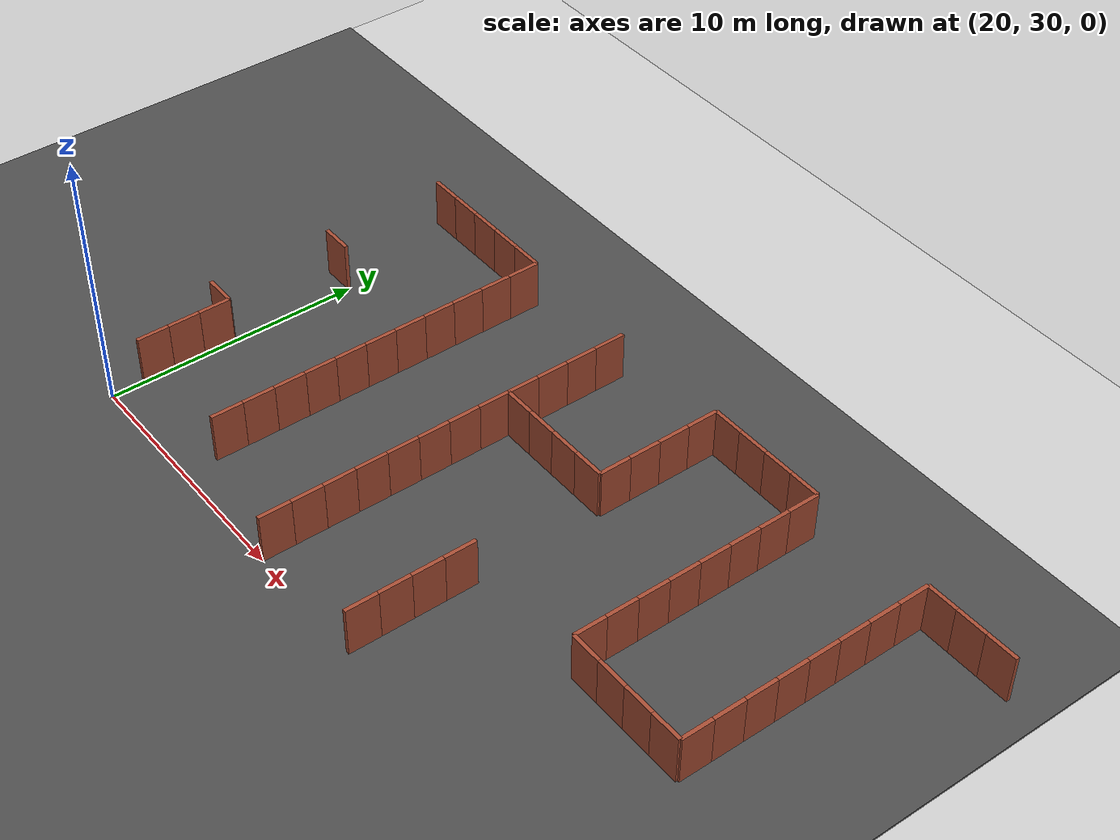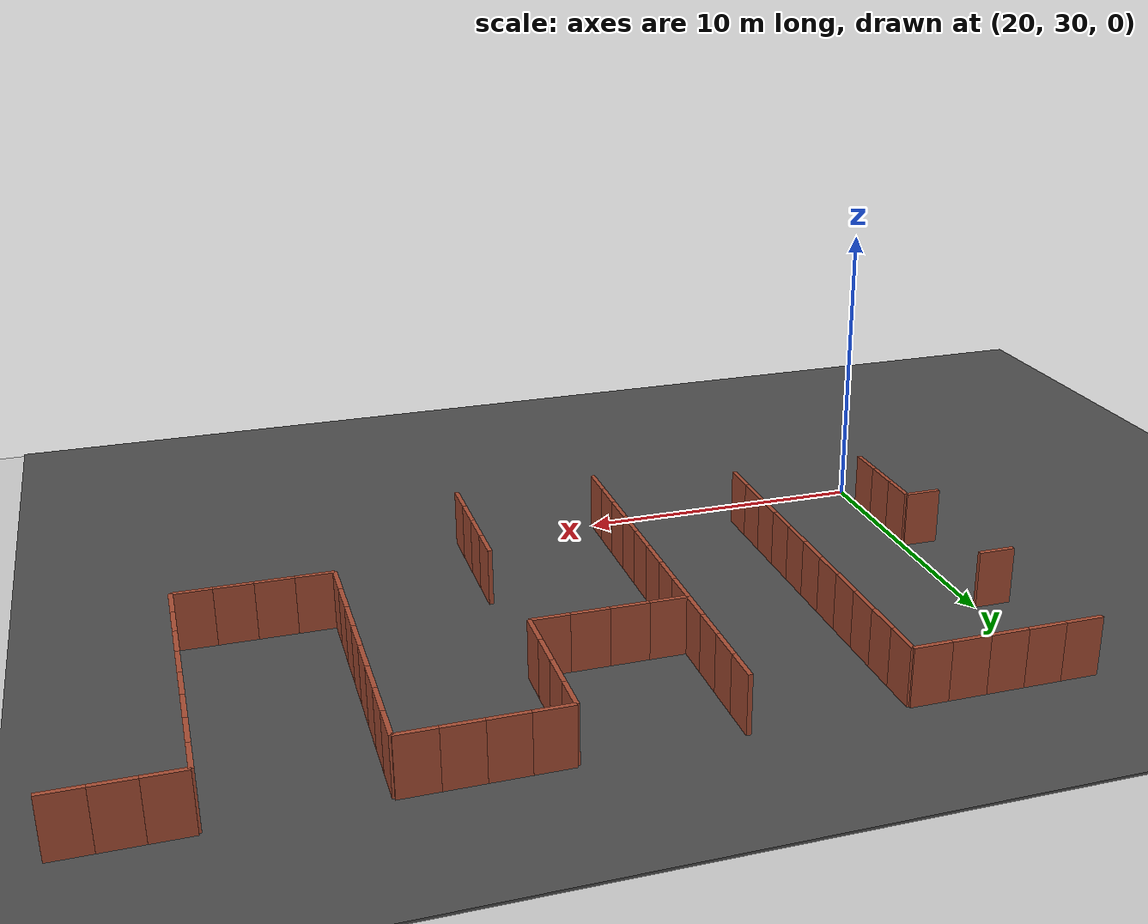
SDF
<sdf version="1.6">
 <world name="default">
  <model name="ground_plane">
   <static>1</static>
   <link name="link">
    <collision name="collision">
     <geometry><plane><normal>0 0 1</normal><size>100 100</size></plane></geometry>
     <surface><friction><ode><mu>100</mu><mu2>50</mu2></ode></friction></surface>
    </collision>
    <visual name="visual">
     <cast_shadows>0</cast_shadows>
     <geometry><plane><normal>0 0 1</normal><size>100 100</size></plane></geometry>
     <material>
      <script><uri>file://media/materials/scripts/gazebo.material</uri><name>Gazebo/Grey</name></script>
     </material>
    </visual>
   </link>
  </model>
  <model name="asphalt_plane">
   <static>1</static>
   <link name="link">
    <collision name="collision"><geometry><box><size>100 100 0.1</size></box></geometry></collision>
    <visual name="visual">
     <cast_shadows>0</cast_shadows>
     <geometry><box><size>100 100 0.1</size></box></geometry>
     <material>
      <script>
       <uri>model://asphalt_plane/materials/scripts</uri>
       <uri>model://asphalt_plane/materials/textures</uri>
       <name>vrc/asphalt</name>
      </script>
     </material>
    </visual>
   </link>
  </model>
  <model name="brick_wall_28_33_horizontal1">
   <pose>20 33.125 0 0 -0 1.5708</pose>
   <link name="Wall_0">
    <collision name="Wall_0_Collision">
     <geometry><box><size>1.25 0.15 2</size></box></geometry>
     <pose>0 0 1 0 -0 0</pose>
    </collision>
    <visual name="Wall_0_Visual">
     <pose>0 0 1 0 -0 0</pose>
     <geometry><box><size>1.25 0.15 2</size></box></geometry>
     <material>
      <script><uri>file://media/materials/scripts/gazebo.material</uri><name>Gazebo/Bricks</name></script>
      <ambient>1 1 1 1</ambient>
     </material>
     <meta><layer>0</layer></meta>
    </visual>
   </link>
   <static>1</static>
  </model>
  <model name="brick_wall_28_33_horizontal2">
   <pose>20 31.875 0 0 -0 1.5708</pose>
   <link name="Wall_0">
    <collision name="Wall_0_Collision">
     <geometry><box><size>1.25 0.15 2</size></box></geometry>
     <pose>0 0 1 0 -0 0</pose>
    </collision>
    <visual name="Wall_0_Visual">
     <pose>0 0 1 0 -0 0</pose>
     <geometry><box><size>1.25 0.15 2</size></box></geometry>
     <material>
      <script><uri>file://media/materials/scripts/gazebo.material</uri><name>Gazebo/Bricks</name></script>
      <ambient>1 1 1 1</ambient>
     </material>
     <meta><layer>0</layer></meta>
    </visual>
   </link>
   <static>1</static>
  </model>
  <model name="brick_wall_28_34_vertical2">
   <pose>19.375 35 0 0 -0 0</pose>
   <link name="Wall_0">
    <collision name="Wall_0_Collision">
     <geometry><box><size>1.25 0.15 2</size></box></geometry>
     <pose>0 0 1 0 -0 0</pose>
    </collision>
    <visual name="Wall_0_Visual">
     <pose>0 0 1 0 -0 0</pose>
     <geometry><box><size>1.25 0.15 2</size></box></geometry>
     <material>
      <script><uri>file://media/materials/scripts/gazebo.material</uri><name>Gazebo/Bricks</name></script>
      <ambient>1 1 1 1</ambient>
     </material>
     <meta><layer>0</layer></meta>
    </visual>
   </link>
   <static>1</static>
  </model>
  <model name="brick_wall_28_34_horizontal2">
   <pose>20 34.375 0 0 -0 1.5708</pose>
   <link name="Wall_0">
    <collision name="Wall_0_Collision">
     <geometry><box><size>1.25 0.15 2</size></box></geometry>
     <pose>0 0 1 0 -0 0</pose>
    </collision>
    <visual name="Wall_0_Visual">
     <pose>0 0 1 0 -0 0</pose>
     <geometry><box><size>1.25 0.15 2</size></box></geometry>
     <material>
      <script><uri>file://media/materials/scripts/gazebo.material</uri><name>Gazebo/Bricks</name></script>
      <ambient>1 1 1 1</ambient>
     </material>
     <meta><layer>0</layer></meta>
    </visual>
   </link>
   <static>1</static>
  </model>
  <model name="brick_wall_28_36_vertical2">
   <pose>19.375 40 0 0 -0 0</pose>
   <link name="Wall_0">
    <collision name="Wall_0_Collision">
     <geometry><box><size>1.25 0.15 2</size></box></geometry>
     <pose>0 0 1 0 -0 0</pose>
    </collision>
    <visual name="Wall_0_Visual">
     <pose>0 0 1 0 -0 0</pose>
     <geometry><box><size>1.25 0.15 2</size></box></geometry>
     <material>
      <script><uri>file://media/materials/scripts/gazebo.material</uri><name>Gazebo/Bricks</name></script>
      <ambient>1 1 1 1</ambient>
     </material>
     <meta><layer>0</layer></meta>
    </visual>
   </link>
   <static>1</static>
  </model>
  <model name="brick_wall_28_38_vertical1">
   <pose>20.625 45 0 0 -0 0</pose>
   <link name="Wall_0">
    <collision name="Wall_0_Collision">
     <geometry><box><size>1.25 0.15 2</size></box></geometry>
     <pose>0 0 1 0 -0 0</pose>
    </collision>
    <visual name="Wall_0_Visual">
     <pose>0 0 1 0 -0 0</pose>
     <geometry><box><size>1.25 0.15 2</size></box></geometry>
     <material>
      <script><uri>file://media/materials/scripts/gazebo.material</uri><name>Gazebo/Bricks</name></script>
      <ambient>1 1 1 1</ambient>
     </material>
     <meta><layer>0</layer></meta>
    </visual>
   </link>
   <static>1</static>
  </model>
  <model name="brick_wall_28_38_vertical2">
   <pose>19.375 45 0 0 -0 0</pose>
   <link name="Wall_0">
    <collision name="Wall_0_Collision">
     <geometry><box><size>1.25 0.15 2</size></box></geometry>
     <pose>0 0 1 0 -0 0</pose>
    </collision>
    <visual name="Wall_0_Visual">
     <pose>0 0 1 0 -0 0</pose>
     <geometry><box><size>1.25 0.15 2</size></box></geometry>
     <material>
      <script><uri>file://media/materials/scripts/gazebo.material</uri><name>Gazebo/Bricks</name></script>
      <ambient>1 1 1 1</ambient>
     </material>
     <meta><layer>0</layer></meta>
    </visual>
   </link>
   <static>1</static>
  </model>
  <model name="brick_wall_29_38_vertical1">
   <pose>23.125 45 0 0 -0 0</pose>
   <link name="Wall_0">
    <collision name="Wall_0_Collision">
     <geometry><box><size>1.25 0.15 2</size></box></geometry>
     <pose>0 0 1 0 -0 0</pose>
    </collision>
    <visual name="Wall_0_Visual">
     <pose>0 0 1 0 -0 0</pose>
     <geometry><box><size>1.25 0.15 2</size></box></geometry>
     <material>
      <script><uri>file://media/materials/scripts/gazebo.material</uri><name>Gazebo/Bricks</name></script>
      <ambient>1 1 1 1</ambient>
     </material>
     <meta><layer>0</layer></meta>
    </visual>
   </link>
   <static>1</static>
  </model>
  <model name="brick_wall_29_38_vertical2">
   <pose>21.875 45 0 0 -0 0</pose>
   <link name="Wall_0">
    <collision name="Wall_0_Collision">
     <geometry><box><size>1.25 0.15 2</size></box></geometry>
     <pose>0 0 1 0 -0 0</pose>
    </collision>
    <visual name="Wall_0_Visual">
     <pose>0 0 1 0 -0 0</pose>
     <geometry><box><size>1.25 0.15 2</size></box></geometry>
     <material>
      <script><uri>file://media/materials/scripts/gazebo.material</uri><name>Gazebo/Bricks</name></script>
      <ambient>1 1 1 1</ambient>
     </material>
     <meta><layer>0</layer></meta>
    </visual>
   </link>
   <static>1</static>
  </model>
  <model name="brick_wall_30_33_horizontal1">
   <pose>25 33.125 0 0 -0 1.5708</pose>
   <link name="Wall_0">
    <collision name="Wall_0_Collision">
     <geometry><box><size>1.25 0.15 2</size></box></geometry>
     <pose>0 0 1 0 -0 0</pose>
    </collision>
    <visual name="Wall_0_Visual">
     <pose>0 0 1 0 -0 0</pose>
     <geometry><box><size>1.25 0.15 2</size></box></geometry>
     <material>
      <script><uri>file://media/materials/scripts/gazebo.material</uri><name>Gazebo/Bricks</name></script>
      <ambient>1 1 1 1</ambient>
     </material>
     <meta><layer>0</layer></meta>
    </visual>
   </link>
   <static>1</static>
  </model>
  <model name="brick_wall_30_33_horizontal2">
   <pose>25 31.875 0 0 -0 1.5708</pose>
   <link name="Wall_0">
    <collision name="Wall_0_Collision">
     <geometry><box><size>1.25 0.15 2</size></box></geometry>
     <pose>0 0 1 0 -0 0</pose>
    </collision>
    <visual name="Wall_0_Visual">
     <pose>0 0 1 0 -0 0</pose>
     <geometry><box><size>1.25 0.15 2</size></box></geometry>
     <material>
      <script><uri>file://media/materials/scripts/gazebo.material</uri><name>Gazebo/Bricks</name></script>
      <ambient>1 1 1 1</ambient>
     </material>
     <meta><layer>0</layer></meta>
    </visual>
   </link>
   <static>1</static>
  </model>
  <model name="brick_wall_30_34_horizontal1">
   <pose>25 35.625 0 0 -0 1.5708</pose>
   <link name="Wall_0">
    <collision name="Wall_0_Collision">
     <geometry><box><size>1.25 0.15 2</size></box></geometry>
     <pose>0 0 1 0 -0 0</pose>
    </collision>
    <visual name="Wall_0_Visual">
     <pose>0 0 1 0 -0 0</pose>
     <geometry><box><size>1.25 0.15 2</size></box></geometry>
     <material>
      <script><uri>file://media/materials/scripts/gazebo.material</uri><name>Gazebo/Bricks</name></script>
      <ambient>1 1 1 1</ambient>
     </material>
     <meta><layer>0</layer></meta>
    </visual>
   </link>
   <static>1</static>
  </model>
  <model name="brick_wall_30_34_horizontal2">
   <pose>25 34.375 0 0 -0 1.5708</pose>
   <link name="Wall_0">
    <collision name="Wall_0_Collision">
     <geometry><box><size>1.25 0.15 2</size></box></geometry>
     <pose>0 0 1 0 -0 0</pose>
    </collision>
    <visual name="Wall_0_Visual">
     <pose>0 0 1 0 -0 0</pose>
     <geometry><box><size>1.25 0.15 2</size></box></geometry>
     <material>
      <script><uri>file://media/materials/scripts/gazebo.material</uri><name>Gazebo/Bricks</name></script>
      <ambient>1 1 1 1</ambient>
     </material>
     <meta><layer>0</layer></meta>
    </visual>
   </link>
   <static>1</static>
  </model>
  <model name="brick_wall_30_35_horizontal1">
   <pose>25 38.125 0 0 -0 1.5708</pose>
   <link name="Wall_0">
    <collision name="Wall_0_Collision">
     <geometry><box><size>1.25 0.15 2</size></box></geometry>
     <pose>0 0 1 0 -0 0</pose>
    </collision>
    <visual name="Wall_0_Visual">
     <pose>0 0 1 0 -0 0</pose>
     <geometry><box><size>1.25 0.15 2</size></box></geometry>
     <material>
      <script><uri>file://media/materials/scripts/gazebo.material</uri><name>Gazebo/Bricks</name></script>
      <ambient>1 1 1 1</ambient>
     </material>
     <meta><layer>0</layer></meta>
    </visual>
   </link>
   <static>1</static>
  </model>
  <model name="brick_wall_30_35_horizontal2">
   <pose>25 36.875 0 0 -0 1.5708</pose>
   <link name="Wall_0">
    <collision name="Wall_0_Collision">
     <geometry><box><size>1.25 0.15 2</size></box></geometry>
     <pose>0 0 1 0 -0 0</pose>
    </collision>
    <visual name="Wall_0_Visual">
     <pose>0 0 1 0 -0 0</pose>
     <geometry><box><size>1.25 0.15 2</size></box></geometry>
     <material>
      <script><uri>file://media/materials/scripts/gazebo.material</uri><name>Gazebo/Bricks</name></script>
      <ambient>1 1 1 1</ambient>
     </material>
     <meta><layer>0</layer></meta>
    </visual>
   </link>
   <static>1</static>
  </model>
  <model name="brick_wall_30_36_horizontal1">
   <pose>25 40.625 0 0 -0 1.5708</pose>
   <link name="Wall_0">
    <collision name="Wall_0_Collision">
     <geometry><box><size>1.25 0.15 2</size></box></geometry>
     <pose>0 0 1 0 -0 0</pose>
    </collision>
    <visual name="Wall_0_Visual">
     <pose>0 0 1 0 -0 0</pose>
     <geometry><box><size>1.25 0.15 2</size></box></geometry>
     <material>
      <script><uri>file://media/materials/scripts/gazebo.material</uri><name>Gazebo/Bricks</name></script>
      <ambient>1 1 1 1</ambient>
     </material>
     <meta><layer>0</layer></meta>
    </visual>
   </link>
   <static>1</static>
  </model>
  <model name="brick_wall_30_36_horizontal2">
   <pose>25 39.375 0 0 -0 1.5708</pose>
   <link name="Wall_0">
    <collision name="Wall_0_Collision">
     <geometry><box><size>1.25 0.15 2</size></box></geometry>
     <pose>0 0 1 0 -0 0</pose>
    </collision>
    <visual name="Wall_0_Visual">
     <pose>0 0 1 0 -0 0</pose>
     <geometry><box><size>1.25 0.15 2</size></box></geometry>
     <material>
      <script><uri>file://media/materials/scripts/gazebo.material</uri><name>Gazebo/Bricks</name></script>
      <ambient>1 1 1 1</ambient>
     </material>
     <meta><layer>0</layer></meta>
    </visual>
   </link>
   <static>1</static>
  </model>
  <model name="brick_wall_30_37_horizontal1">
   <pose>25 43.125 0 0 -0 1.5708</pose>
   <link name="Wall_0">
    <collision name="Wall_0_Collision">
     <geometry><box><size>1.25 0.15 2</size></box></geometry>
     <pose>0 0 1 0 -0 0</pose>
    </collision>
    <visual name="Wall_0_Visual">
     <pose>0 0 1 0 -0 0</pose>
     <geometry><box><size>1.25 0.15 2</size></box></geometry>
     <material>
      <script><uri>file://media/materials/scripts/gazebo.material</uri><name>Gazebo/Bricks</name></script>
      <ambient>1 1 1 1</ambient>
     </material>
     <meta><layer>0</layer></meta>
    </visual>
   </link>
   <static>1</static>
  </model>
  <model name="brick_wall_30_37_horizontal2">
   <pose>25 41.875 0 0 -0 1.5708</pose>
   <link name="Wall_0">
    <collision name="Wall_0_Collision">
     <geometry><box><size>1.25 0.15 2</size></box></geometry>
     <pose>0 0 1 0 -0 0</pose>
    </collision>
    <visual name="Wall_0_Visual">
     <pose>0 0 1 0 -0 0</pose>
     <geometry><box><size>1.25 0.15 2</size></box></geometry>
     <material>
      <script><uri>file://media/materials/scripts/gazebo.material</uri><name>Gazebo/Bricks</name></script>
      <ambient>1 1 1 1</ambient>
     </material>
     <meta><layer>0</layer></meta>
    </visual>
   </link>
   <static>1</static>
  </model>
  <model name="brick_wall_30_38_vertical2">
   <pose>24.375 45 0 0 -0 0</pose>
   <link name="Wall_0">
    <collision name="Wall_0_Collision">
     <geometry><box><size>1.25 0.15 2</size></box></geometry>
     <pose>0 0 1 0 -0 0</pose>
    </collision>
    <visual name="Wall_0_Visual">
     <pose>0 0 1 0 -0 0</pose>
     <geometry><box><size>1.25 0.15 2</size></box></geometry>
     <material>
      <script><uri>file://media/materials/scripts/gazebo.material</uri><name>Gazebo/Bricks</name></script>
      <ambient>1 1 1 1</ambient>
     </material>
     <meta><layer>0</layer></meta>
    </visual>
   </link>
   <static>1</static>
  </model>
  <model name="brick_wall_30_38_horizontal2">
   <pose>25 44.375 0 0 -0 1.5708</pose>
   <link name="Wall_0">
    <collision name="Wall_0_Collision">
     <geometry><box><size>1.25 0.15 2</size></box></geometry>
     <pose>0 0 1 0 -0 0</pose>
    </collision>
    <visual name="Wall_0_Visual">
     <pose>0 0 1 0 -0 0</pose>
     <geometry><box><size>1.25 0.15 2</size></box></geometry>
     <material>
      <script><uri>file://media/materials/scripts/gazebo.material</uri><name>Gazebo/Bricks</name></script>
      <ambient>1 1 1 1</ambient>
     </material>
     <meta><layer>0</layer></meta>
    </visual>
   </link>
   <static>1</static>
  </model>
  <model name="brick_wall_32_32_horizontal1">
   <pose>30 30.625 0 0 -0 1.5708</pose>
   <link name="Wall_0">
    <collision name="Wall_0_Collision">
     <geometry><box><size>1.25 0.15 2</size></box></geometry>
     <pose>0 0 1 0 -0 0</pose>
    </collision>
    <visual name="Wall_0_Visual">
     <pose>0 0 1 0 -0 0</pose>
     <geometry><box><size>1.25 0.15 2</size></box></geometry>
     <material>
      <script><uri>file://media/materials/scripts/gazebo.material</uri><name>Gazebo/Bricks</name></script>
      <ambient>1 1 1 1</ambient>
     </material>
     <meta><layer>0</layer></meta>
    </visual>
   </link>
   <static>1</static>
  </model>
  <model name="brick_wall_32_33_horizontal1">
   <pose>30 33.125 0 0 -0 1.5708</pose>
   <link name="Wall_0">
    <collision name="Wall_0_Collision">
     <geometry><box><size>1.25 0.15 2</size></box></geometry>
     <pose>0 0 1 0 -0 0</pose>
    </collision>
    <visual name="Wall_0_Visual">
     <pose>0 0 1 0 -0 0</pose>
     <geometry><box><size>1.25 0.15 2</size></box></geometry>
     <material>
      <script><uri>file://media/materials/scripts/gazebo.material</uri><name>Gazebo/Bricks</name></script>
      <ambient>1 1 1 1</ambient>
     </material>
     <meta><layer>0</layer></meta>
    </visual>
   </link>
   <static>1</static>
  </model>
  <model name="brick_wall_32_33_horizontal2">
   <pose>30 31.875 0 0 -0 1.5708</pose>
   <link name="Wall_0">
    <collision name="Wall_0_Collision">
     <geometry><box><size>1.25 0.15 2</size></box></geometry>
     <pose>0 0 1 0 -0 0</pose>
    </collision>
    <visual name="Wall_0_Visual">
     <pose>0 0 1 0 -0 0</pose>
     <geometry><box><size>1.25 0.15 2</size></box></geometry>
     <material>
      <script><uri>file://media/materials/scripts/gazebo.material</uri><name>Gazebo/Bricks</name></script>
      <ambient>1 1 1 1</ambient>
     </material>
     <meta><layer>0</layer></meta>
    </visual>
   </link>
   <static>1</static>
  </model>
  <model name="brick_wall_32_34_horizontal1">
   <pose>30 35.625 0 0 -0 1.5708</pose>
   <link name="Wall_0">
    <collision name="Wall_0_Collision">
     <geometry><box><size>1.25 0.15 2</size></box></geometry>
     <pose>0 0 1 0 -0 0</pose>
    </collision>
    <visual name="Wall_0_Visual">
     <pose>0 0 1 0 -0 0</pose>
     <geometry><box><size>1.25 0.15 2</size></box></geometry>
     <material>
      <script><uri>file://media/materials/scripts/gazebo.material</uri><name>Gazebo/Bricks</name></script>
      <ambient>1 1 1 1</ambient>
     </material>
     <meta><layer>0</layer></meta>
    </visual>
   </link>
   <static>1</static>
  </model>
  <model name="brick_wall_32_34_horizontal2">
   <pose>30 34.375 0 0 -0 1.5708</pose>
   <link name="Wall_0">
    <collision name="Wall_0_Collision">
     <geometry><box><size>1.25 0.15 2</size></box></geometry>
     <pose>0 0 1 0 -0 0</pose>
    </collision>
    <visual name="Wall_0_Visual">
     <pose>0 0 1 0 -0 0</pose>
     <geometry><box><size>1.25 0.15 2</size></box></geometry>
     <material>
      <script><uri>file://media/materials/scripts/gazebo.material</uri><name>Gazebo/Bricks</name></script>
      <ambient>1 1 1 1</ambient>
     </material>
     <meta><layer>0</layer></meta>
    </visual>
   </link>
   <static>1</static>
  </model>
  <model name="brick_wall_32_35_horizontal1">
   <pose>30 38.125 0 0 -0 1.5708</pose>
   <link name="Wall_0">
    <collision name="Wall_0_Collision">
     <geometry><box><size>1.25 0.15 2</size></box></geometry>
     <pose>0 0 1 0 -0 0</pose>
    </collision>
    <visual name="Wall_0_Visual">
     <pose>0 0 1 0 -0 0</pose>
     <geometry><box><size>1.25 0.15 2</size></box></geometry>
     <material>
      <script><uri>file://media/materials/scripts/gazebo.material</uri><name>Gazebo/Bricks</name></script>
      <ambient>1 1 1 1</ambient>
     </material>
     <meta><layer>0</layer></meta>
    </visual>
   </link>
   <static>1</static>
  </model>
  <model name="brick_wall_32_35_horizontal2">
   <pose>30 36.875 0 0 -0 1.5708</pose>
   <link name="Wall_0">
    <collision name="Wall_0_Collision">
     <geometry><box><size>1.25 0.15 2</size></box></geometry>
     <pose>0 0 1 0 -0 0</pose>
    </collision>
    <visual name="Wall_0_Visual">
     <pose>0 0 1 0 -0 0</pose>
     <geometry><box><size>1.25 0.15 2</size></box></geometry>
     <material>
      <script><uri>file://media/materials/scripts/gazebo.material</uri><name>Gazebo/Bricks</name></script>
      <ambient>1 1 1 1</ambient>
     </material>
     <meta><layer>0</layer></meta>
    </visual>
   </link>
   <static>1</static>
  </model>
  <model name="brick_wall_32_36_vertical1">
   <pose>30.625 40 0 0 -0 0</pose>
   <link name="Wall_0">
    <collision name="Wall_0_Collision">
     <geometry><box><size>1.25 0.15 2</size></box></geometry>
     <pose>0 0 1 0 -0 0</pose>
    </collision>
    <visual name="Wall_0_Visual">
     <pose>0 0 1 0 -0 0</pose>
     <geometry><box><size>1.25 0.15 2</size></box></geometry>
     <material>
      <script><uri>file://media/materials/scripts/gazebo.material</uri><name>Gazebo/Bricks</name></script>
      <ambient>1 1 1 1</ambient>
     </material>
     <meta><layer>0</layer></meta>
    </visual>
   </link>
   <static>1</static>
  </model>
  <model name="brick_wall_32_36_horizontal1">
   <pose>30 40.625 0 0 -0 1.5708</pose>
   <link name="Wall_0">
    <collision name="Wall_0_Collision">
     <geometry><box><size>1.25 0.15 2</size></box></geometry>
     <pose>0 0 1 0 -0 0</pose>
    </collision>
    <visual name="Wall_0_Visual">
     <pose>0 0 1 0 -0 0</pose>
     <geometry><box><size>1.25 0.15 2</size></box></geometry>
     <material>
      <script><uri>file://media/materials/scripts/gazebo.material</uri><name>Gazebo/Bricks</name></script>
      <ambient>1 1 1 1</ambient>
     </material>
     <meta><layer>0</layer></meta>
    </visual>
   </link>
   <static>1</static>
  </model>
  <model name="brick_wall_32_36_horizontal2">
   <pose>30 39.375 0 0 -0 1.5708</pose>
   <link name="Wall_0">
    <collision name="Wall_0_Collision">
     <geometry><box><size>1.25 0.15 2</size></box></geometry>
     <pose>0 0 1 0 -0 0</pose>
    </collision>
    <visual name="Wall_0_Visual">
     <pose>0 0 1 0 -0 0</pose>
     <geometry><box><size>1.25 0.15 2</size></box></geometry>
     <material>
      <script><uri>file://media/materials/scripts/gazebo.material</uri><name>Gazebo/Bricks</name></script>
      <ambient>1 1 1 1</ambient>
     </material>
     <meta><layer>0</layer></meta>
    </visual>
   </link>
   <static>1</static>
  </model>
  <model name="brick_wall_32_37_horizontal1">
   <pose>30 43.125 0 0 -0 1.5708</pose>
   <link name="Wall_0">
    <collision name="Wall_0_Collision">
     <geometry><box><size>1.25 0.15 2</size></box></geometry>
     <pose>0 0 1 0 -0 0</pose>
    </collision>
    <visual name="Wall_0_Visual">
     <pose>0 0 1 0 -0 0</pose>
     <geometry><box><size>1.25 0.15 2</size></box></geometry>
     <material>
      <script><uri>file://media/materials/scripts/gazebo.material</uri><name>Gazebo/Bricks</name></script>
      <ambient>1 1 1 1</ambient>
     </material>
     <meta><layer>0</layer></meta>
    </visual>
   </link>
   <static>1</static>
  </model>
  <model name="brick_wall_32_37_horizontal2">
   <pose>30 41.875 0 0 -0 1.5708</pose>
   <link name="Wall_0">
    <collision name="Wall_0_Collision">
     <geometry><box><size>1.25 0.15 2</size></box></geometry>
     <pose>0 0 1 0 -0 0</pose>
    </collision>
    <visual name="Wall_0_Visual">
     <pose>0 0 1 0 -0 0</pose>
     <geometry><box><size>1.25 0.15 2</size></box></geometry>
     <material>
      <script><uri>file://media/materials/scripts/gazebo.material</uri><name>Gazebo/Bricks</name></script>
      <ambient>1 1 1 1</ambient>
     </material>
     <meta><layer>0</layer></meta>
    </visual>
   </link>
   <static>1</static>
  </model>
  <model name="brick_wall_32_38_horizontal2">
   <pose>30 44.375 0 0 -0 1.5708</pose>
   <link name="Wall_0">
    <collision name="Wall_0_Collision">
     <geometry><box><size>1.25 0.15 2</size></box></geometry>
     <pose>0 0 1 0 -0 0</pose>
    </collision>
    <visual name="Wall_0_Visual">
     <pose>0 0 1 0 -0 0</pose>
     <geometry><box><size>1.25 0.15 2</size></box></geometry>
     <material>
      <script><uri>file://media/materials/scripts/gazebo.material</uri><name>Gazebo/Bricks</name></script>
      <ambient>1 1 1 1</ambient>
     </material>
     <meta><layer>0</layer></meta>
    </visual>
   </link>
   <static>1</static>
  </model>
  <model name="brick_wall_33_36_vertical1">
   <pose>33.125 40 0 0 -0 0</pose>
   <link name="Wall_0">
    <collision name="Wall_0_Collision">
     <geometry><box><size>1.25 0.15 2</size></box></geometry>
     <pose>0 0 1 0 -0 0</pose>
    </collision>
    <visual name="Wall_0_Visual">
     <pose>0 0 1 0 -0 0</pose>
     <geometry><box><size>1.25 0.15 2</size></box></geometry>
     <material>
      <script><uri>file://media/materials/scripts/gazebo.material</uri><name>Gazebo/Bricks</name></script>
      <ambient>1 1 1 1</ambient>
     </material>
     <meta><layer>0</layer></meta>
    </visual>
   </link>
   <static>1</static>
  </model>
  <model name="brick_wall_33_36_vertical2">
   <pose>31.875 40 0 0 -0 0</pose>
   <link name="Wall_0">
    <collision name="Wall_0_Collision">
     <geometry><box><size>1.25 0.15 2</size></box></geometry>
     <pose>0 0 1 0 -0 0</pose>
    </collision>
    <visual name="Wall_0_Visual">
     <pose>0 0 1 0 -0 0</pose>
     <geometry><box><size>1.25 0.15 2</size></box></geometry>
     <material>
      <script><uri>file://media/materials/scripts/gazebo.material</uri><name>Gazebo/Bricks</name></script>
      <ambient>1 1 1 1</ambient>
     </material>
     <meta><layer>0</layer></meta>
    </visual>
   </link>
   <static>1</static>
  </model>
  <model name="brick_wall_34_32_horizontal1">
   <pose>35 30.625 0 0 -0 1.5708</pose>
   <link name="Wall_0">
    <collision name="Wall_0_Collision">
     <geometry><box><size>1.25 0.15 2</size></box></geometry>
     <pose>0 0 1 0 -0 0</pose>
    </collision>
    <visual name="Wall_0_Visual">
     <pose>0 0 1 0 -0 0</pose>
     <geometry><box><size>1.25 0.15 2</size></box></geometry>
     <material>
      <script><uri>file://media/materials/scripts/gazebo.material</uri><name>Gazebo/Bricks</name></script>
      <ambient>1 1 1 1</ambient>
     </material>
     <meta><layer>0</layer></meta>
    </visual>
   </link>
   <static>1</static>
  </model>
  <model name="brick_wall_34_33_horizontal1">
   <pose>35 33.125 0 0 -0 1.5708</pose>
   <link name="Wall_0">
    <collision name="Wall_0_Collision">
     <geometry><box><size>1.25 0.15 2</size></box></geometry>
     <pose>0 0 1 0 -0 0</pose>
    </collision>
    <visual name="Wall_0_Visual">
     <pose>0 0 1 0 -0 0</pose>
     <geometry><box><size>1.25 0.15 2</size></box></geometry>
     <material>
      <script><uri>file://media/materials/scripts/gazebo.material</uri><name>Gazebo/Bricks</name></script>
      <ambient>1 1 1 1</ambient>
     </material>
     <meta><layer>0</layer></meta>
    </visual>
   </link>
   <static>1</static>
  </model>
  <model name="brick_wall_34_33_horizontal2">
   <pose>35 31.875 0 0 -0 1.5708</pose>
   <link name="Wall_0">
    <collision name="Wall_0_Collision">
     <geometry><box><size>1.25 0.15 2</size></box></geometry>
     <pose>0 0 1 0 -0 0</pose>
    </collision>
    <visual name="Wall_0_Visual">
     <pose>0 0 1 0 -0 0</pose>
     <geometry><box><size>1.25 0.15 2</size></box></geometry>
     <material>
      <script><uri>file://media/materials/scripts/gazebo.material</uri><name>Gazebo/Bricks</name></script>
      <ambient>1 1 1 1</ambient>
     </material>
     <meta><layer>0</layer></meta>
    </visual>
   </link>
   <static>1</static>
  </model>
  <model name="brick_wall_34_34_horizontal2">
   <pose>35 34.375 0 0 -0 1.5708</pose>
   <link name="Wall_0">
    <collision name="Wall_0_Collision">
     <geometry><box><size>1.25 0.15 2</size></box></geometry>
     <pose>0 0 1 0 -0 0</pose>
    </collision>
    <visual name="Wall_0_Visual">
     <pose>0 0 1 0 -0 0</pose>
     <geometry><box><size>1.25 0.15 2</size></box></geometry>
     <material>
      <script><uri>file://media/materials/scripts/gazebo.material</uri><name>Gazebo/Bricks</name></script>
      <ambient>1 1 1 1</ambient>
     </material>
     <meta><layer>0</layer></meta>
    </visual>
   </link>
   <static>1</static>
  </model>
  <model name="brick_wall_34_36_vertical2">
   <pose>34.375 40 0 0 -0 0</pose>
   <link name="Wall_0">
    <collision name="Wall_0_Collision">
     <geometry><box><size>1.25 0.15 2</size></box></geometry>
     <pose>0 0 1 0 -0 0</pose>
    </collision>
    <visual name="Wall_0_Visual">
     <pose>0 0 1 0 -0 0</pose>
     <geometry><box><size>1.25 0.15 2</size></box></geometry>
     <material>
      <script><uri>file://media/materials/scripts/gazebo.material</uri><name>Gazebo/Bricks</name></script>
      <ambient>1 1 1 1</ambient>
     </material>
     <meta><layer>0</layer></meta>
    </visual>
   </link>
   <static>1</static>
  </model>
  <model name="brick_wall_34_36_horizontal1">
   <pose>35 40.625 0 0 -0 1.5708</pose>
   <link name="Wall_0">
    <collision name="Wall_0_Collision">
     <geometry><box><size>1.25 0.15 2</size></box></geometry>
     <pose>0 0 1 0 -0 0</pose>
    </collision>
    <visual name="Wall_0_Visual">
     <pose>0 0 1 0 -0 0</pose>
     <geometry><box><size>1.25 0.15 2</size></box></geometry>
     <material>
      <script><uri>file://media/materials/scripts/gazebo.material</uri><name>Gazebo/Bricks</name></script>
      <ambient>1 1 1 1</ambient>
     </material>
     <meta><layer>0</layer></meta>
    </visual>
   </link>
   <static>1</static>
  </model>
  <model name="brick_wall_34_37_horizontal1">
   <pose>35 43.125 0 0 -0 1.5708</pose>
   <link name="Wall_0">
    <collision name="Wall_0_Collision">
     <geometry><box><size>1.25 0.15 2</size></box></geometry>
     <pose>0 0 1 0 -0 0</pose>
    </collision>
    <visual name="Wall_0_Visual">
     <pose>0 0 1 0 -0 0</pose>
     <geometry><box><size>1.25 0.15 2</size></box></geometry>
     <material>
      <script><uri>file://media/materials/scripts/gazebo.material</uri><name>Gazebo/Bricks</name></script>
      <ambient>1 1 1 1</ambient>
     </material>
     <meta><layer>0</layer></meta>
    </visual>
   </link>
   <static>1</static>
  </model>
  <model name="brick_wall_34_37_horizontal2">
   <pose>35 41.875 0 0 -0 1.5708</pose>
   <link name="Wall_0">
    <collision name="Wall_0_Collision">
     <geometry><box><size>1.25 0.15 2</size></box></geometry>
     <pose>0 0 1 0 -0 0</pose>
    </collision>
    <visual name="Wall_0_Visual">
     <pose>0 0 1 0 -0 0</pose>
     <geometry><box><size>1.25 0.15 2</size></box></geometry>
     <material>
      <script><uri>file://media/materials/scripts/gazebo.material</uri><name>Gazebo/Bricks</name></script>
      <ambient>1 1 1 1</ambient>
     </material>
     <meta><layer>0</layer></meta>
    </visual>
   </link>
   <static>1</static>
  </model>
  <model name="brick_wall_34_38_vertical1">
   <pose>35.625 45 0 0 -0 0</pose>
   <link name="Wall_0">
    <collision name="Wall_0_Collision">
     <geometry><box><size>1.25 0.15 2</size></box></geometry>
     <pose>0 0 1 0 -0 0</pose>
    </collision>
    <visual name="Wall_0_Visual">
     <pose>0 0 1 0 -0 0</pose>
     <geometry><box><size>1.25 0.15 2</size></box></geometry>
     <material>
      <script><uri>file://media/materials/scripts/gazebo.material</uri><name>Gazebo/Bricks</name></script>
      <ambient>1 1 1 1</ambient>
     </material>
     <meta><layer>0</layer></meta>
    </visual>
   </link>
   <static>1</static>
  </model>
  <model name="brick_wall_34_38_horizontal2">
   <pose>35 44.375 0 0 -0 1.5708</pose>
   <link name="Wall_0">
    <collision name="Wall_0_Collision">
     <geometry><box><size>1.25 0.15 2</size></box></geometry>
     <pose>0 0 1 0 -0 0</pose>
    </collision>
    <visual name="Wall_0_Visual">
     <pose>0 0 1 0 -0 0</pose>
     <geometry><box><size>1.25 0.15 2</size></box></geometry>
     <material>
      <script><uri>file://media/materials/scripts/gazebo.material</uri><name>Gazebo/Bricks</name></script>
      <ambient>1 1 1 1</ambient>
     </material>
     <meta><layer>0</layer></meta>
    </visual>
   </link>
   <static>1</static>
  </model>
  <model name="brick_wall_35_38_vertical1">
   <pose>38.125 45 0 0 -0 0</pose>
   <link name="Wall_0">
    <collision name="Wall_0_Collision">
     <geometry><box><size>1.25 0.15 2</size></box></geometry>
     <pose>0 0 1 0 -0 0</pose>
    </collision>
    <visual name="Wall_0_Visual">
     <pose>0 0 1 0 -0 0</pose>
     <geometry><box><size>1.25 0.15 2</size></box></geometry>
     <material>
      <script><uri>file://media/materials/scripts/gazebo.material</uri><name>Gazebo/Bricks</name></script>
      <ambient>1 1 1 1</ambient>
     </material>
     <meta><layer>0</layer></meta>
    </visual>
   </link>
   <static>1</static>
  </model>
  <model name="brick_wall_35_38_vertical2">
   <pose>36.875 45 0 0 -0 0</pose>
   <link name="Wall_0">
    <collision name="Wall_0_Collision">
     <geometry><box><size>1.25 0.15 2</size></box></geometry>
     <pose>0 0 1 0 -0 0</pose>
    </collision>
    <visual name="Wall_0_Visual">
     <pose>0 0 1 0 -0 0</pose>
     <geometry><box><size>1.25 0.15 2</size></box></geometry>
     <material>
      <script><uri>file://media/materials/scripts/gazebo.material</uri><name>Gazebo/Bricks</name></script>
      <ambient>1 1 1 1</ambient>
     </material>
     <meta><layer>0</layer></meta>
    </visual>
   </link>
   <static>1</static>
  </model>
  <model name="brick_wall_36_34_vertical1">
   <pose>40.625 35 0 0 -0 0</pose>
   <link name="Wall_0">
    <collision name="Wall_0_Collision">
     <geometry><box><size>1.25 0.15 2</size></box></geometry>
     <pose>0 0 1 0 -0 0</pose>
    </collision>
    <visual name="Wall_0_Visual">
     <pose>0 0 1 0 -0 0</pose>
     <geometry><box><size>1.25 0.15 2</size></box></geometry>
     <material>
      <script><uri>file://media/materials/scripts/gazebo.material</uri><name>Gazebo/Bricks</name></script>
      <ambient>1 1 1 1</ambient>
     </material>
     <meta><layer>0</layer></meta>
    </visual>
   </link>
   <static>1</static>
  </model>
  <model name="brick_wall_36_34_horizontal1">
   <pose>40 35.625 0 0 -0 1.5708</pose>
   <link name="Wall_0">
    <collision name="Wall_0_Collision">
     <geometry><box><size>1.25 0.15 2</size></box></geometry>
     <pose>0 0 1 0 -0 0</pose>
    </collision>
    <visual name="Wall_0_Visual">
     <pose>0 0 1 0 -0 0</pose>
     <geometry><box><size>1.25 0.15 2</size></box></geometry>
     <material>
      <script><uri>file://media/materials/scripts/gazebo.material</uri><name>Gazebo/Bricks</name></script>
      <ambient>1 1 1 1</ambient>
     </material>
     <meta><layer>0</layer></meta>
    </visual>
   </link>
   <static>1</static>
  </model>
  <model name="brick_wall_36_35_horizontal1">
   <pose>40 38.125 0 0 -0 1.5708</pose>
   <link name="Wall_0">
    <collision name="Wall_0_Collision">
     <geometry><box><size>1.25 0.15 2</size></box></geometry>
     <pose>0 0 1 0 -0 0</pose>
    </collision>
    <visual name="Wall_0_Visual">
     <pose>0 0 1 0 -0 0</pose>
     <geometry><box><size>1.25 0.15 2</size></box></geometry>
     <material>
      <script><uri>file://media/materials/scripts/gazebo.material</uri><name>Gazebo/Bricks</name></script>
      <ambient>1 1 1 1</ambient>
     </material>
     <meta><layer>0</layer></meta>
    </visual>
   </link>
   <static>1</static>
  </model>
  <model name="brick_wall_36_35_horizontal2">
   <pose>40 36.875 0 0 -0 1.5708</pose>
   <link name="Wall_0">
    <collision name="Wall_0_Collision">
     <geometry><box><size>1.25 0.15 2</size></box></geometry>
     <pose>0 0 1 0 -0 0</pose>
    </collision>
    <visual name="Wall_0_Visual">
     <pose>0 0 1 0 -0 0</pose>
     <geometry><box><size>1.25 0.15 2</size></box></geometry>
     <material>
      <script><uri>file://media/materials/scripts/gazebo.material</uri><name>Gazebo/Bricks</name></script>
      <ambient>1 1 1 1</ambient>
     </material>
     <meta><layer>0</layer></meta>
    </visual>
   </link>
   <static>1</static>
  </model>
  <model name="brick_wall_36_36_horizontal1">
   <pose>40 40.625 0 0 -0 1.5708</pose>
   <link name="Wall_0">
    <collision name="Wall_0_Collision">
     <geometry><box><size>1.25 0.15 2</size></box></geometry>
     <pose>0 0 1 0 -0 0</pose>
    </collision>
    <visual name="Wall_0_Visual">
     <pose>0 0 1 0 -0 0</pose>
     <geometry><box><size>1.25 0.15 2</size></box></geometry>
     <material>
      <script><uri>file://media/materials/scripts/gazebo.material</uri><name>Gazebo/Bricks</name></script>
      <ambient>1 1 1 1</ambient>
     </material>
     <meta><layer>0</layer></meta>
    </visual>
   </link>
   <static>1</static>
  </model>
  <model name="brick_wall_36_36_horizontal2">
   <pose>40 39.375 0 0 -0 1.5708</pose>
   <link name="Wall_0">
    <collision name="Wall_0_Collision">
     <geometry><box><size>1.25 0.15 2</size></box></geometry>
     <pose>0 0 1 0 -0 0</pose>
    </collision>
    <visual name="Wall_0_Visual">
     <pose>0 0 1 0 -0 0</pose>
     <geometry><box><size>1.25 0.15 2</size></box></geometry>
     <material>
      <script><uri>file://media/materials/scripts/gazebo.material</uri><name>Gazebo/Bricks</name></script>
      <ambient>1 1 1 1</ambient>
     </material>
     <meta><layer>0</layer></meta>
    </visual>
   </link>
   <static>1</static>
  </model>
  <model name="brick_wall_36_37_horizontal1">
   <pose>40 43.125 0 0 -0 1.5708</pose>
   <link name="Wall_0">
    <collision name="Wall_0_Collision">
     <geometry><box><size>1.25 0.15 2</size></box></geometry>
     <pose>0 0 1 0 -0 0</pose>
    </collision>
    <visual name="Wall_0_Visual">
     <pose>0 0 1 0 -0 0</pose>
     <geometry><box><size>1.25 0.15 2</size></box></geometry>
     <material>
      <script><uri>file://media/materials/scripts/gazebo.material</uri><name>Gazebo/Bricks</name></script>
      <ambient>1 1 1 1</ambient>
     </material>
     <meta><layer>0</layer></meta>
    </visual>
   </link>
   <static>1</static>
  </model>
  <model name="brick_wall_36_37_horizontal2">
   <pose>40 41.875 0 0 -0 1.5708</pose>
   <link name="Wall_0">
    <collision name="Wall_0_Collision">
     <geometry><box><size>1.25 0.15 2</size></box></geometry>
     <pose>0 0 1 0 -0 0</pose>
    </collision>
    <visual name="Wall_0_Visual">
     <pose>0 0 1 0 -0 0</pose>
     <geometry><box><size>1.25 0.15 2</size></box></geometry>
     <material>
      <script><uri>file://media/materials/scripts/gazebo.material</uri><name>Gazebo/Bricks</name></script>
      <ambient>1 1 1 1</ambient>
     </material>
     <meta><layer>0</layer></meta>
    </visual>
   </link>
   <static>1</static>
  </model>
  <model name="brick_wall_36_38_vertical2">
   <pose>39.375 45 0 0 -0 0</pose>
   <link name="Wall_0">
    <collision name="Wall_0_Collision">
     <geometry><box><size>1.25 0.15 2</size></box></geometry>
     <pose>0 0 1 0 -0 0</pose>
    </collision>
    <visual name="Wall_0_Visual">
     <pose>0 0 1 0 -0 0</pose>
     <geometry><box><size>1.25 0.15 2</size></box></geometry>
     <material>
      <script><uri>file://media/materials/scripts/gazebo.material</uri><name>Gazebo/Bricks</name></script>
      <ambient>1 1 1 1</ambient>
     </material>
     <meta><layer>0</layer></meta>
    </visual>
   </link>
   <static>1</static>
  </model>
  <model name="brick_wall_36_38_horizontal2">
   <pose>40 44.375 0 0 -0 1.5708</pose>
   <link name="Wall_0">
    <collision name="Wall_0_Collision">
     <geometry><box><size>1.25 0.15 2</size></box></geometry>
     <pose>0 0 1 0 -0 0</pose>
    </collision>
    <visual name="Wall_0_Visual">
     <pose>0 0 1 0 -0 0</pose>
     <geometry><box><size>1.25 0.15 2</size></box></geometry>
     <material>
      <script><uri>file://media/materials/scripts/gazebo.material</uri><name>Gazebo/Bricks</name></script>
      <ambient>1 1 1 1</ambient>
     </material>
     <meta><layer>0</layer></meta>
    </visual>
   </link>
   <static>1</static>
  </model>
  <model name="brick_wall_37_34_vertical1">
   <pose>43.125 35 0 0 -0 0</pose>
   <link name="Wall_0">
    <collision name="Wall_0_Collision">
     <geometry><box><size>1.25 0.15 2</size></box></geometry>
     <pose>0 0 1 0 -0 0</pose>
    </collision>
    <visual name="Wall_0_Visual">
     <pose>0 0 1 0 -0 0</pose>
     <geometry><box><size>1.25 0.15 2</size></box></geometry>
     <material>
      <script><uri>file://media/materials/scripts/gazebo.material</uri><name>Gazebo/Bricks</name></script>
      <ambient>1 1 1 1</ambient>
     </material>
     <meta><layer>0</layer></meta>
    </visual>
   </link>
   <static>1</static>
  </model>
  <model name="brick_wall_37_34_vertical2">
   <pose>41.875 35 0 0 -0 0</pose>
   <link name="Wall_0">
    <collision name="Wall_0_Collision">
     <geometry><box><size>1.25 0.15 2</size></box></geometry>
     <pose>0 0 1 0 -0 0</pose>
    </collision>
    <visual name="Wall_0_Visual">
     <pose>0 0 1 0 -0 0</pose>
     <geometry><box><size>1.25 0.15 2</size></box></geometry>
     <material>
      <script><uri>file://media/materials/scripts/gazebo.material</uri><name>Gazebo/Bricks</name></script>
      <ambient>1 1 1 1</ambient>
     </material>
     <meta><layer>0</layer></meta>
    </visual>
   </link>
   <static>1</static>
  </model>
  <model name="brick_wall_38_34_vertical2">
   <pose>44.375 35 0 0 -0 0</pose>
   <link name="Wall_0">
    <collision name="Wall_0_Collision">
     <geometry><box><size>1.25 0.15 2</size></box></geometry>
     <pose>0 0 1 0 -0 0</pose>
    </collision>
    <visual name="Wall_0_Visual">
     <pose>0 0 1 0 -0 0</pose>
     <geometry><box><size>1.25 0.15 2</size></box></geometry>
     <material>
      <script><uri>file://media/materials/scripts/gazebo.material</uri><name>Gazebo/Bricks</name></script>
      <ambient>1 1 1 1</ambient>
     </material>
     <meta><layer>0</layer></meta>
    </visual>
   </link>
   <static>1</static>
  </model>
  <model name="brick_wall_38_34_horizontal1">
   <pose>45 35.625 0 0 -0 1.5708</pose>
   <link name="Wall_0">
    <collision name="Wall_0_Collision">
     <geometry><box><size>1.25 0.15 2</size></box></geometry>
     <pose>0 0 1 0 -0 0</pose>
    </collision>
    <visual name="Wall_0_Visual">
     <pose>0 0 1 0 -0 0</pose>
     <geometry><box><size>1.25 0.15 2</size></box></geometry>
     <material>
      <script><uri>file://media/materials/scripts/gazebo.material</uri><name>Gazebo/Bricks</name></script>
      <ambient>1 1 1 1</ambient>
     </material>
     <meta><layer>0</layer></meta>
    </visual>
   </link>
   <static>1</static>
  </model>
  <model name="brick_wall_38_35_horizontal1">
   <pose>45 38.125 0 0 -0 1.5708</pose>
   <link name="Wall_0">
    <collision name="Wall_0_Collision">
     <geometry><box><size>1.25 0.15 2</size></box></geometry>
     <pose>0 0 1 0 -0 0</pose>
    </collision>
    <visual name="Wall_0_Visual">
     <pose>0 0 1 0 -0 0</pose>
     <geometry><box><size>1.25 0.15 2</size></box></geometry>
     <material>
      <script><uri>file://media/materials/scripts/gazebo.material</uri><name>Gazebo/Bricks</name></script>
      <ambient>1 1 1 1</ambient>
     </material>
     <meta><layer>0</layer></meta>
    </visual>
   </link>
   <static>1</static>
  </model>
  <model name="brick_wall_38_35_horizontal2">
   <pose>45 36.875 0 0 -0 1.5708</pose>
   <link name="Wall_0">
    <collision name="Wall_0_Collision">
     <geometry><box><size>1.25 0.15 2</size></box></geometry>
     <pose>0 0 1 0 -0 0</pose>
    </collision>
    <visual name="Wall_0_Visual">
     <pose>0 0 1 0 -0 0</pose>
     <geometry><box><size>1.25 0.15 2</size></box></geometry>
     <material>
      <script><uri>file://media/materials/scripts/gazebo.material</uri><name>Gazebo/Bricks</name></script>
      <ambient>1 1 1 1</ambient>
     </material>
     <meta><layer>0</layer></meta>
    </visual>
   </link>
   <static>1</static>
  </model>
  <model name="brick_wall_38_36_horizontal1">
   <pose>45 40.625 0 0 -0 1.5708</pose>
   <link name="Wall_0">
    <collision name="Wall_0_Collision">
     <geometry><box><size>1.25 0.15 2</size></box></geometry>
     <pose>0 0 1 0 -0 0</pose>
    </collision>
    <visual name="Wall_0_Visual">
     <pose>0 0 1 0 -0 0</pose>
     <geometry><box><size>1.25 0.15 2</size></box></geometry>
     <material>
      <script><uri>file://media/materials/scripts/gazebo.material</uri><name>Gazebo/Bricks</name></script>
      <ambient>1 1 1 1</ambient>
     </material>
     <meta><layer>0</layer></meta>
    </visual>
   </link>
   <static>1</static>
  </model>
  <model name="brick_wall_38_36_horizontal2">
   <pose>45 39.375 0 0 -0 1.5708</pose>
   <link name="Wall_0">
    <collision name="Wall_0_Collision">
     <geometry><box><size>1.25 0.15 2</size></box></geometry>
     <pose>0 0 1 0 -0 0</pose>
    </collision>
    <visual name="Wall_0_Visual">
     <pose>0 0 1 0 -0 0</pose>
     <geometry><box><size>1.25 0.15 2</size></box></geometry>
     <material>
      <script><uri>file://media/materials/scripts/gazebo.material</uri><name>Gazebo/Bricks</name></script>
      <ambient>1 1 1 1</ambient>
     </material>
     <meta><layer>0</layer></meta>
    </visual>
   </link>
   <static>1</static>
  </model>
  <model name="brick_wall_38_37_horizontal1">
   <pose>45 43.125 0 0 -0 1.5708</pose>
   <link name="Wall_0">
    <collision name="Wall_0_Collision">
     <geometry><box><size>1.25 0.15 2</size></box></geometry>
     <pose>0 0 1 0 -0 0</pose>
    </collision>
    <visual name="Wall_0_Visual">
     <pose>0 0 1 0 -0 0</pose>
     <geometry><box><size>1.25 0.15 2</size></box></geometry>
     <material>
      <script><uri>file://media/materials/scripts/gazebo.material</uri><name>Gazebo/Bricks</name></script>
      <ambient>1 1 1 1</ambient>
     </material>
     <meta><layer>0</layer></meta>
    </visual>
   </link>
   <static>1</static>
  </model>
  <model name="brick_wall_38_37_horizontal2">
   <pose>45 41.875 0 0 -0 1.5708</pose>
   <link name="Wall_0">
    <collision name="Wall_0_Collision">
     <geometry><box><size>1.25 0.15 2</size></box></geometry>
     <pose>0 0 1 0 -0 0</pose>
    </collision>
    <visual name="Wall_0_Visual">
     <pose>0 0 1 0 -0 0</pose>
     <geometry><box><size>1.25 0.15 2</size></box></geometry>
     <material>
      <script><uri>file://media/materials/scripts/gazebo.material</uri><name>Gazebo/Bricks</name></script>
      <ambient>1 1 1 1</ambient>
     </material>
     <meta><layer>0</layer></meta>
    </visual>
   </link>
   <static>1</static>
  </model>
  <model name="brick_wall_38_38_vertical1">
   <pose>45.625 45 0 0 -0 0</pose>
   <link name="Wall_0">
    <collision name="Wall_0_Collision">
     <geometry><box><size>1.25 0.15 2</size></box></geometry>
     <pose>0 0 1 0 -0 0</pose>
    </collision>
    <visual name="Wall_0_Visual">
     <pose>0 0 1 0 -0 0</pose>
     <geometry><box><size>1.25 0.15 2</size></box></geometry>
     <material>
      <script><uri>file://media/materials/scripts/gazebo.material</uri><name>Gazebo/Bricks</name></script>
      <ambient>1 1 1 1</ambient>
     </material>
     <meta><layer>0</layer></meta>
    </visual>
   </link>
   <static>1</static>
  </model>
  <model name="brick_wall_38_38_horizontal2">
   <pose>45 44.375 0 0 -0 1.5708</pose>
   <link name="Wall_0">
    <collision name="Wall_0_Collision">
     <geometry><box><size>1.25 0.15 2</size></box></geometry>
     <pose>0 0 1 0 -0 0</pose>
    </collision>
    <visual name="Wall_0_Visual">
     <pose>0 0 1 0 -0 0</pose>
     <geometry><box><size>1.25 0.15 2</size></box></geometry>
     <material>
      <script><uri>file://media/materials/scripts/gazebo.material</uri><name>Gazebo/Bricks</name></script>
      <ambient>1 1 1 1</ambient>
     </material>
     <meta><layer>0</layer></meta>
    </visual>
   </link>
   <static>1</static>
  </model>
  <model name="brick_wall_39_38_vertical1">
   <pose>48.125 45 0 0 -0 0</pose>
   <link name="Wall_0">
    <collision name="Wall_0_Collision">
     <geometry><box><size>1.25 0.15 2</size></box></geometry>
     <pose>0 0 1 0 -0 0</pose>
    </collision>
    <visual name="Wall_0_Visual">
     <pose>0 0 1 0 -0 0</pose>
     <geometry><box><size>1.25 0.15 2</size></box></geometry>
     <material>
      <script><uri>file://media/materials/scripts/gazebo.material</uri><name>Gazebo/Bricks</name></script>
      <ambient>1 1 1 1</ambient>
     </material>
     <meta><layer>0</layer></meta>
    </visual>
   </link>
   <static>1</static>
  </model>
  <model name="brick_wall_39_38_vertical2">
   <pose>46.875 45 0 0 -0 0</pose>
   <link name="Wall_0">
    <collision name="Wall_0_Collision">
     <geometry><box><size>1.25 0.15 2</size></box></geometry>
     <pose>0 0 1 0 -0 0</pose>
    </collision>
    <visual name="Wall_0_Visual">
     <pose>0 0 1 0 -0 0</pose>
     <geometry><box><size>1.25 0.15 2</size></box></geometry>
     <material>
      <script><uri>file://media/materials/scripts/gazebo.material</uri><name>Gazebo/Bricks</name></script>
      <ambient>1 1 1 1</ambient>
     </material>
     <meta><layer>0</layer></meta>
    </visual>
   </link>
   <static>1</static>
  </model>
 </world>
</sdf>
